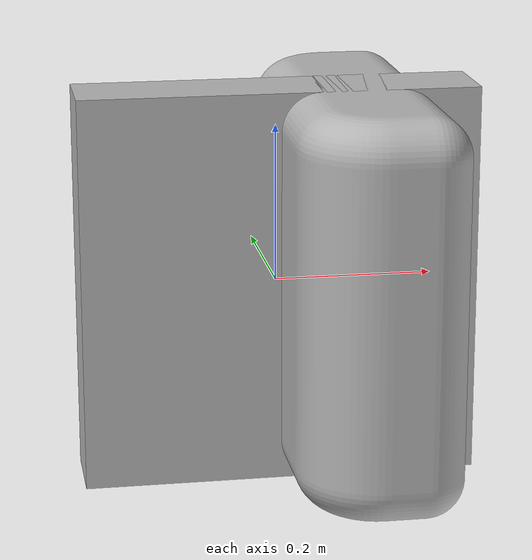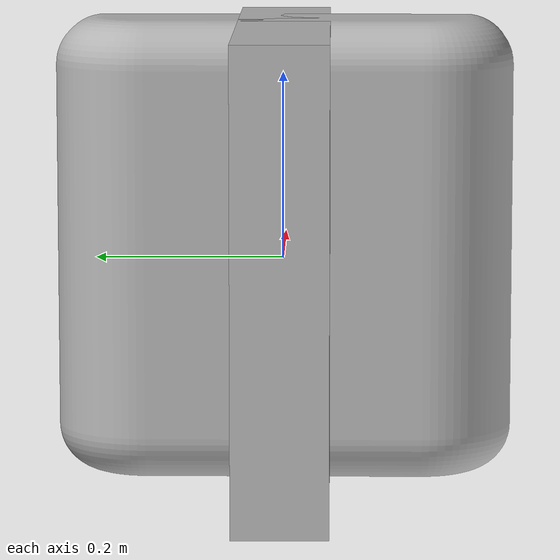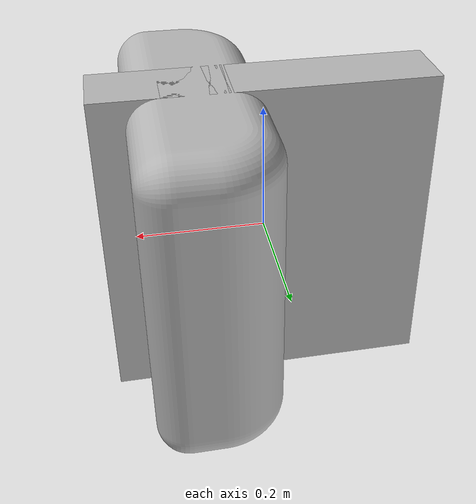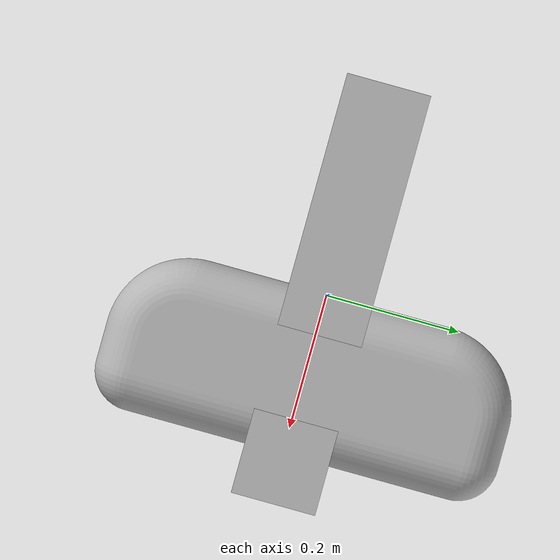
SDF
<?xml version="1.0"?>
<sdf version="1.5">
  <model name="soap_marker">
    <pose>0 0 0 0 0 0</pose>
    <static>false</static>

    <link name="aruco_link_base">

      <visual name="visual">
        <geometry>
          <mesh>
            <uri>model://soap_marker/meshes/soap_marker.dae</uri>
          </mesh>
        </geometry>
      </visual>

      <collision name="collision">
        <geometry>
          <mesh>
            <uri>model://soap_marker/meshes/soap_marker.dae</uri>
          </mesh>
        </geometry>
      </collision>

    </link>

    <link name="marker_box">
      <pose>0 0 0 0 0 0</pose>
      <visual name="visual">
        <geometry>
          <box>
            <size>0.5 0.1 0.5</size>
          </box>
        </geometry>
        <material>
          <script>
            <uri>model://soap_marker/materials/scripts</uri>
            <uri>model://soap_marker/materials/textures</uri>
            <name>ArucoVisualMarker26/Marker</name>
          </script>
          <emissive>1 1 1 1</emissive>
        </material>
      </visual>

      <collision name="collision">
        <geometry>
          <box>
            <size>0.5 0.1 0.5</size>
          </box>
        </geometry>
      </collision>

    </link>

    <joint name="merker_joint" type="fixed">
      <child>marker_box</child>
      <parent>aruco_link_base</parent>
    </joint>

    <plugin name="aruco_move" filename="libgazebo_ros_planar_move.so">
      <commandTopic>aruco_cmd_vel</commandTopic>
      <odometryTopic>odom</odometryTopic>
      <odometryFrame>odom</odometryFrame>                         <!-- header frame id -->
      <robotBaseFrame>aruco_link_base</robotBaseFrame>            <!-- child  frame id -->
    </plugin>

  </model>
</sdf>
